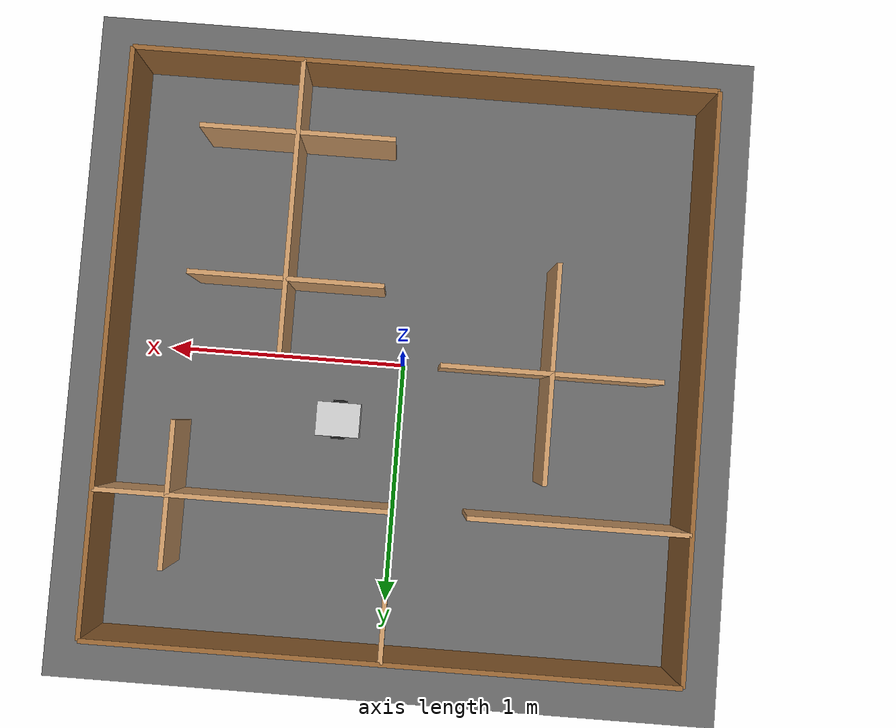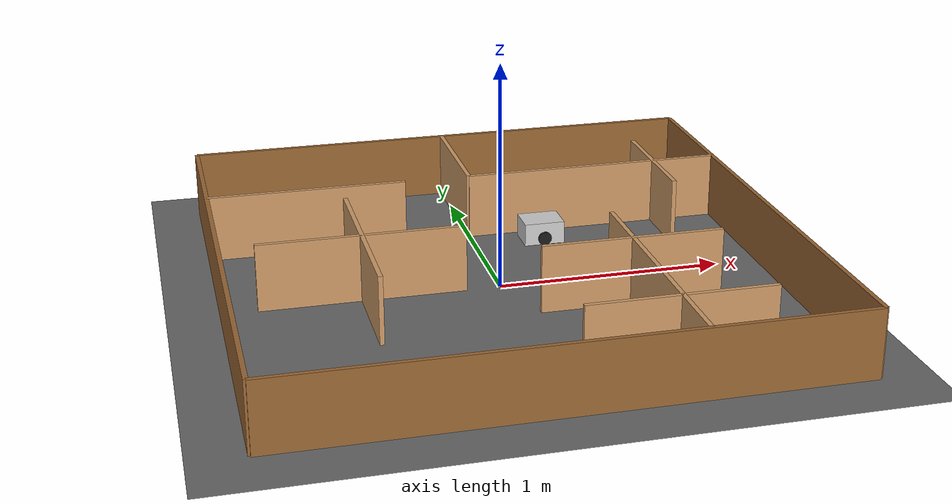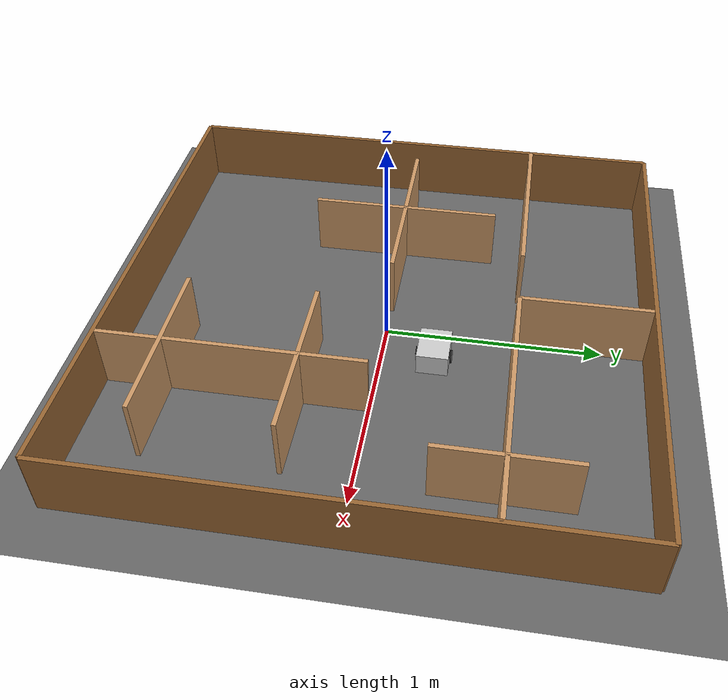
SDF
<?xml version="1.0"?>
<sdf version="1.9">
  <world name="maze_world">

    <physics name="1ms" type="ignored">
      <max_step_size>0.001</max_step_size>
      <real_time_factor>1.0</real_time_factor>
    </physics>

    <plugin filename="gz-sim-physics-system" name="gz::sim::systems::Physics"/>
    <plugin filename="gz-sim-user-commands-system" name="gz::sim::systems::UserCommands"/>
    <plugin filename="gz-sim-scene-broadcaster-system" name="gz::sim::systems::SceneBroadcaster"/>
    <plugin filename="gz-sim-sensors-system" name="gz::sim::systems::Sensors">
      <render_engine>ogre2</render_engine>
    </plugin>

    <light type="directional" name="sun">
      <cast_shadows>true</cast_shadows>
      <pose>0 0 10 0 0 0</pose>
      <diffuse>0.8 0.8 0.8 1</diffuse>
      <specular>0.2 0.2 0.2 1</specular>
      <direction>-0.5 0.1 -0.9</direction>
    </light>

    <model name="ground_plane">
      <static>true</static>
      <link name="link">
        <pose>0 0 0 0 0 0</pose>
        <collision name="collision">
          <geometry>
            <plane>
              <normal>0 0 1</normal>
              <size>20 20</size>
            </plane>
          </geometry>
        </collision>
        <visual name="visual">
          <geometry>
            <plane>
              <normal>0 0 1</normal>
              <size>20 20</size>
            </plane>
          </geometry>
          <material>
            <ambient>0.3 0.3 0.3 1</ambient>
            <diffuse>0.4 0.4 0.4 1</diffuse>
          </material>
        </visual>
      </link>
    </model>

    <!-- ================= MAZE ================= -->
    <model name="wood_maze">
      <static>true</static>

      <link name="outer_bottom">
        <pose>0 -1.2 0.15 0 0 0</pose>
        <collision name="col">
          <geometry><box><size>2.4 0.02 0.30</size></box></geometry>
        </collision>
        <visual name="vis">
          <geometry><box><size>2.4 0.02 0.30</size></box></geometry>
          <material><ambient>0.6 0.4 0.2 1</ambient></material>
        </visual>
      </link>

      <link name="outer_top">
        <pose>0 1.2 0.15 0 0 0</pose>
        <collision name="col">
          <geometry><box><size>2.4 0.02 0.30</size></box></geometry>
        </collision>
        <visual name="vis">
          <geometry><box><size>2.4 0.02 0.30</size></box></geometry>
          <material><ambient>0.6 0.4 0.2 1</ambient></material>
        </visual>
      </link>

      <link name="outer_left">
        <pose>-1.2 0 0.15 0 0 0</pose>
        <collision name="col">
          <geometry><box><size>0.02 2.4 0.30</size></box></geometry>
        </collision>
        <visual name="vis">
          <geometry><box><size>0.02 2.4 0.30</size></box></geometry>
          <material><ambient>0.6 0.4 0.2 1</ambient></material>
        </visual>
      </link>

      <link name="outer_right">
        <pose>1.2 0 0.15 0 0 0</pose>
        <collision name="col">
          <geometry><box><size>0.02 2.4 0.30</size></box></geometry>
        </collision>
        <visual name="vis">
          <geometry><box><size>0.02 2.4 0.30</size></box></geometry>
          <material><ambient>0.6 0.4 0.2 1</ambient></material>
        </visual>
      </link>

      <link name="top_left_short_h">
        <pose>-0.75 0.6 0.15 0 0 0</pose>
        <collision name="col">
          <geometry><box><size>0.9 0.02 0.30</size></box></geometry>
        </collision>
        <visual name="vis">
          <geometry><box><size>0.9 0.02 0.30</size></box></geometry>
          <material><ambient>0.8 0.6 0.4 1</ambient></material>
        </visual>
      </link>

      <link name="top_center_vertical">
        <pose>0.0 0.9 0.15 0 0 0</pose>
        <collision name="col">
          <geometry><box><size>0.02 0.6 0.30</size></box></geometry>
        </collision>
        <visual name="vis">
          <geometry><box><size>0.02 0.6 0.30</size></box></geometry>
          <material><ambient>0.8 0.6 0.4 1</ambient></material>
        </visual>
      </link>

      <link name="top_right_long_h">
        <pose>0.6 0.6 0.15 0 0 0</pose>
        <collision name="col">
          <geometry><box><size>1.2 0.02 0.30</size></box></geometry>
        </collision>
        <visual name="vis">
          <geometry><box><size>1.2 0.02 0.30</size></box></geometry>
          <material><ambient>0.8 0.6 0.4 1</ambient></material>
        </visual>
      </link>

      <link name="top_right_cross_v">
        <pose>0.9 0.6 0.15 0 0 0</pose>
        <collision name="col">
          <geometry><box><size>0.02 0.6 0.30</size></box></geometry>
        </collision>
        <visual name="vis">
          <geometry><box><size>0.02 0.6 0.30</size></box></geometry>
          <material><ambient>0.8 0.6 0.4 1</ambient></material>
        </visual>
      </link>

      <link name="mid_left_cross_v">
        <pose>-0.6 0.0 0.15 0 0 0</pose>
        <collision name="col">
          <geometry><box><size>0.02 0.9 0.30</size></box></geometry>
        </collision>
        <visual name="vis">
          <geometry><box><size>0.02 0.9 0.30</size></box></geometry>
          <material><ambient>0.8 0.6 0.4 1</ambient></material>
        </visual>
      </link>

      <link name="mid_left_cross_h">
        <pose>-0.6 0.0 0.15 0 0 0</pose>
        <collision name="col">
          <geometry><box><size>0.9 0.02 0.30</size></box></geometry>
        </collision>
        <visual name="vis">
          <geometry><box><size>0.9 0.02 0.30</size></box></geometry>
          <material><ambient>0.8 0.6 0.4 1</ambient></material>
        </visual>
      </link>

      <link name="bottom_vertical">
        <pose>0.5 -0.6 0.15 0 0 0</pose>
        <collision name="col">
          <geometry><box><size>0.02 1.2 0.30</size></box></geometry>
        </collision>
        <visual name="vis">
          <geometry><box><size>0.02 1.2 0.30</size></box></geometry>
          <material><ambient>0.8 0.6 0.4 1</ambient></material>
        </visual>
      </link>

      <link name="bottom_horizontal_low">
        <pose>0.5 -0.9 0.15 0 0 0</pose>
        <collision name="col">
          <geometry><box><size>0.8 0.02 0.30</size></box></geometry>
        </collision>
        <visual name="vis">
          <geometry><box><size>0.8 0.02 0.30</size></box></geometry>
          <material><ambient>0.8 0.6 0.4 1</ambient></material>
        </visual>
      </link>

      <link name="bottom_horizontal_high">
        <pose>0.5 -0.3 0.15 0 0 0</pose>
        <collision name="col">
          <geometry><box><size>0.8 0.02 0.30</size></box></geometry>
        </collision>
        <visual name="vis">
          <geometry><box><size>0.8 0.02 0.30</size></box></geometry>
          <material><ambient>0.8 0.6 0.4 1</ambient></material>
        </visual>
      </link>
    </model>

    <!-- ================= Robot ================= -->
    <include>
      <uri>model://robot</uri>
      <name>robot</name>
      <pose>0.25 0.25 0.1 0 0 0</pose>
    </include>

  </world>
</sdf>

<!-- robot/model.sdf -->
<sdf version="1.9">
  <model name="robot">

    <pose>0 0 0.05 0 0 0</pose>

    <!-- ================= BASE ================= -->
    <link name="base_link">
      <pose>0 0 0.05 0 0 0</pose>

      <inertial>
        <mass>1.5</mass>
        <inertia>
          <ixx>0.02</ixx>
          <iyy>0.02</iyy>
          <izz>0.04</izz>
        </inertia>
      </inertial>

      <collision name="base_collision">
        <geometry>
          <box>
            <size>0.18 0.14 0.10</size>
          </box>
        </geometry>
      </collision>

      <visual name="base_visual">
        <geometry>
          <box>
            <size>0.18 0.14 0.10</size>
          </box>
        </geometry>
        <material>
          <ambient>0.8 0.8 0.8 1</ambient>
          <diffuse>0.8 0.8 0.8 1</diffuse>
        </material>
      </visual>

      <!-- IMU -->
      <sensor name="imu" type="imu">
        <always_on>true</always_on>
        <update_rate>200</update_rate>
        <topic>/model/robot/imu</topic>
      </sensor>

      <!-- GPS -->
      <sensor name="gps" type="gps">
        <always_on>true</always_on>
        <update_rate>5</update_rate>
        <topic>/model/robot/gps</topic>
      </sensor>

      <!-- 2D LIDAR -->
      <sensor name="lidar" type="gpu_lidar">
        <pose>0.09 0 0.12 0 0 0</pose>
        <update_rate>10</update_rate>
        <topic>/scan</topic>

        <lidar>
          <scan>
            <horizontal>
              <samples>720</samples>
              <min_angle>-3.14159</min_angle>
              <max_angle>3.14159</max_angle>
            </horizontal>
          </scan>
          <range>
            <min>0.05</min>
            <max>6.0</max>
          </range>
        </lidar>
      </sensor>
    </link>

    <!-- ================= LEFT WHEEL ================= -->
    <link name="left_wheel">
      <!-- IMPORTANT: roll = 1.5708 to align cylinder axis with Y -->
      <pose>0 0.07 0.03 1.5708 0 0</pose>

      <inertial>
        <mass>0.2</mass>
        <inertia>
          <ixx>0.001</ixx>
          <iyy>0.001</iyy>
          <izz>0.001</izz>
        </inertia>
      </inertial>

      <collision name="collision">
        <geometry>
          <cylinder>
            <radius>0.03</radius>
            <length>0.02</length>
          </cylinder>
        </geometry>
      </collision>

      <visual name="visual">
        <geometry>
          <cylinder>
            <radius>0.03</radius>
            <length>0.02</length>
          </cylinder>
        </geometry>
        <material>
          <ambient>0.1 0.1 0.1 1</ambient>
        </material>
      </visual>
    </link>

    <!-- ================= RIGHT WHEEL ================= -->
    <link name="right_wheel">
      <pose>0 -0.07 0.03 1.5708 0 0</pose>

      <inertial>
        <mass>0.2</mass>
        <inertia>
          <ixx>0.001</ixx>
          <iyy>0.001</iyy>
          <izz>0.001</izz>
        </inertia>
      </inertial>

      <collision name="collision">
        <geometry>
          <cylinder>
            <radius>0.03</radius>
            <length>0.02</length>
          </cylinder>
        </geometry>
      </collision>

      <visual name="visual">
        <geometry>
          <cylinder>
            <radius>0.03</radius>
            <length>0.02</length>
          </cylinder>
        </geometry>
        <material>
          <ambient>0.1 0.1 0.1 1</ambient>
        </material>
      </visual>
    </link>

    <!-- ================= JOINTS ================= -->
    <joint name="left_wheel_joint" type="revolute">
      <parent>base_link</parent>
      <child>left_wheel</child>
      <axis>
        <xyz>0 1 0</xyz>
      </axis>
    </joint>

    <joint name="right_wheel_joint" type="revolute">
      <parent>base_link</parent>
      <child>right_wheel</child>
      <axis>
        <xyz>0 1 0</xyz>
      </axis>
    </joint>

    <!-- ================= DIFF DRIVE ================= -->
    <plugin
      filename="gz-sim-diff-drive-system"
      name="gz::sim::systems::DiffDrive">

      <left_joint>left_wheel_joint</left_joint>
      <right_joint>right_wheel_joint</right_joint>

      <wheel_separation>0.14</wheel_separation>
      <wheel_radius>0.03</wheel_radius>

      <cmd_vel_topic>/model/robot/cmd_vel</cmd_vel_topic>
      <odom_topic>/model/robot/odom</odom_topic>
      <odom_publish_frequency>50</odom_publish_frequency>

      <publish_tf>false</publish_tf>
    </plugin>

  </model>
</sdf>
